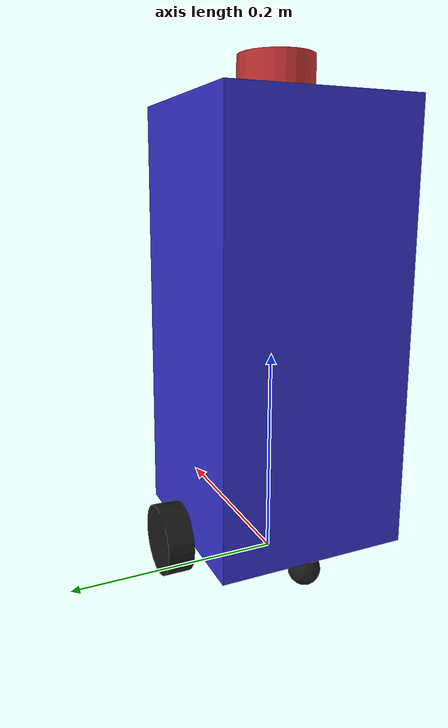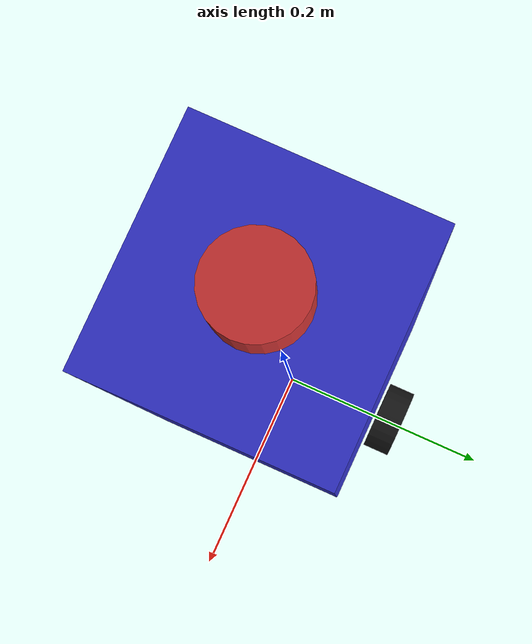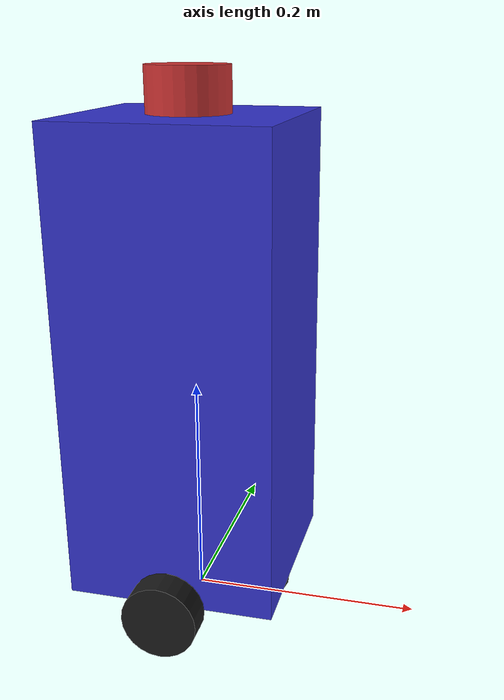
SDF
<?xml version="1.0" ?>
<sdf version="1.7">
  <model name="trash_bot">
    <static>false</static>

    <!-- Base Link -->
    <link name="base_link">
      <pose>0 0 0.0325 0 0 0</pose> <!-- Raised by wheel radius -->

      <inertial>
        <pose>0 0 0.2 0 0 0</pose> <!-- Center of mass at half height -->
        <mass>5.0</mass>
        <inertia>
          <ixx>0.080166667</ixx>
          <ixy>0</ixy>
          <ixz>0</ixz>
          <iyy>0.080166667</iyy>
          <iyz>0</iyz>
          <izz>0.027</izz>
        </inertia>
      </inertial>

      <visual name="base_visual">
        <pose>0 0 0.2 0 0 0</pose>
        <geometry>
          <box>
            <size>0.18 0.18 0.40</size>
          </box>
        </geometry>
        <material>
          <ambient>0.2 0.2 0.8 1</ambient>
          <diffuse>0.2 0.2 0.8 1</diffuse>
        </material>
      </visual>

      <collision name="base_collision">
        <pose>0 0 0.2 0 0 0</pose>
        <geometry>
          <box>
            <size>0.18 0.18 0.40</size>
          </box>
        </geometry>
      </collision>

      <!-- Caster Wheel (Front) -->
      <visual name="front_caster_visual">
        <pose>0.07 0 -0.0175 0 0 0</pose>
        <geometry>
          <sphere>
            <radius>0.015</radius>
          </sphere>
        </geometry>
        <material>
          <ambient>0.1 0.1 0.1 1</ambient>
          <diffuse>0.1 0.1 0.1 1</diffuse>
        </material>
      </visual>

      <collision name="front_caster_collision">
        <pose>0.07 0 -0.0175 0 0 0</pose>
        <geometry>
          <sphere>
            <radius>0.015</radius>
          </sphere>
        </geometry>
        <surface>
          <friction>
            <ode>
              <mu>0.01</mu>
              <mu2>0.01</mu2>
            </ode>
          </friction>
        </surface>
      </collision>

      <!-- Caster Wheel (Back) -->
      <visual name="back_caster_visual">
        <pose>-0.07 0 -0.0175 0 0 0</pose>
        <geometry>
          <sphere>
            <radius>0.015</radius>
          </sphere>
        </geometry>
        <material>
          <ambient>0.1 0.1 0.1 1</ambient>
          <diffuse>0.1 0.1 0.1 1</diffuse>
        </material>
      </visual>

      <collision name="back_caster_collision">
        <pose>-0.07 0 -0.0175 0 0 0</pose>
        <geometry>
          <sphere>
            <radius>0.015</radius>
          </sphere>
        </geometry>
        <surface>
          <friction>
            <ode>
              <mu>0.01</mu>
              <mu2>0.01</mu2>
            </ode>
          </friction>
        </surface>
      </collision>
    </link>

    <!-- Left Wheel -->
    <link name="left_wheel">
      <pose>0 0.105 0.0325 -1.57079632679 0 0</pose>
      <inertial>
        <mass>0.15</mass>
        <inertia>
          <ixx>0.0000474375</ixx>
          <ixy>0</ixy>
          <ixz>0</ixz>
          <iyy>0.0000474375</iyy>
          <iyz>0</iyz>
          <izz>0.00007921875</izz>
        </inertia>
      </inertial>
      <visual name="visual">
        <geometry>
          <cylinder>
            <radius>0.0325</radius>
            <length>0.025</length>
          </cylinder>
        </geometry>
        <material>
          <ambient>0.1 0.1 0.1 1</ambient>
          <diffuse>0.1 0.1 0.1 1</diffuse>
        </material>
      </visual>
      <collision name="collision">
        <geometry>
          <cylinder>
            <radius>0.0325</radius>
            <length>0.025</length>
          </cylinder>
        </geometry>
      </collision>
    </link>

    <!-- Right Wheel -->
    <link name="right_wheel">
      <pose>0 -0.105 0.0325 -1.57079632679 0 0</pose>
      <inertial>
        <mass>0.15</mass>
        <inertia>
          <ixx>0.0000474375</ixx>
          <ixy>0</ixy>
          <ixz>0</ixz>
          <iyy>0.0000474375</iyy>
          <iyz>0</iyz>
          <izz>0.00007921875</izz>
        </inertia>
      </inertial>
      <visual name="visual">
        <geometry>
          <cylinder>
            <radius>0.0325</radius>
            <length>0.025</length>
          </cylinder>
        </geometry>
        <material>
          <ambient>0.1 0.1 0.1 1</ambient>
          <diffuse>0.1 0.1 0.1 1</diffuse>
        </material>
      </visual>
      <collision name="collision">
        <geometry>
          <cylinder>
            <radius>0.0325</radius>
            <length>0.025</length>
          </cylinder>
        </geometry>
      </collision>
    </link>

    <!-- Joints -->
    <joint name="left_wheel_joint" type="revolute">
      <parent>base_link</parent>
      <child>left_wheel</child>
      <axis>
        <xyz>0 0 1</xyz>
        <limit>
          <lower>-1e16</lower>
          <upper>1e16</upper>
        </limit>
      </axis>
    </joint>

    <joint name="right_wheel_joint" type="revolute">
      <parent>base_link</parent>
      <child>right_wheel</child>
      <axis>
        <xyz>0 0 1</xyz>
        <limit>
          <lower>-1e16</lower>
          <upper>1e16</upper>
        </limit>
      </axis>
    </joint>

    <!-- Lidar Sensor -->
    <link name="laser_frame">
      <pose>0 0 0.45 0 0 0</pose>
      <inertial>
        <mass>0.1</mass>
        <inertia>
          <ixx>0.0001</ixx>
          <ixy>0</ixy>
          <ixz>0</ixz>
          <iyy>0.0001</iyy>
          <iyz>0</iyz>
          <izz>0.0001</izz>
        </inertia>
      </inertial>
      <visual name="visual">
        <geometry>
          <cylinder>
            <radius>0.035</radius>
            <length>0.04</length>
          </cylinder>
        </geometry>
        <material>
          <ambient>0.8 0.2 0.2 1</ambient>
          <diffuse>0.8 0.2 0.2 1</diffuse>
        </material>
      </visual>
      <sensor name="lidar" type="ray">
        <pose>0 0 0 0 0 0</pose>
        <always_on>true</always_on>
        <visualize>true</visualize>
        <update_rate>10</update_rate>
        <ray>
          <scan>
            <horizontal>
              <samples>360</samples>
              <resolution>1</resolution>
              <min_angle>0.0</min_angle>
              <max_angle>6.28318530718</max_angle>
            </horizontal>
          </scan>
          <range>
            <min>0.15</min>
            <max>12.0</max>
            <resolution>0.01</resolution>
          </range>
        </ray>
        <plugin name="scan" filename="libgazebo_ros_ray_sensor.so">
          <ros>
            <remapping>~/out:=scan</remapping>
          </ros>
          <output_type>sensor_msgs/LaserScan</output_type>
          <frame_name>laser_frame</frame_name>
        </plugin>
      </sensor>
    </link>

    <joint name="lidar_joint" type="fixed">
      <parent>base_link</parent>
      <child>laser_frame</child>
    </joint>

    <!-- Differential Drive Plugin -->
    <plugin name="diff_drive" filename="libgazebo_ros_diff_drive.so">
      <ros>
        <namespace>/</namespace>
      </ros>
      <left_joint>left_wheel_joint</left_joint>
      <right_joint>right_wheel_joint</right_joint>
      <wheel_separation>0.21</wheel_separation>
      <wheel_diameter>0.065</wheel_diameter>
      <max_wheel_torque>10</max_wheel_torque>
      <max_wheel_acceleration>1.0</max_wheel_acceleration>
      <publish_odom>true</publish_odom>
      <publish_odom_tf>true</publish_odom_tf>
      <publish_wheel_tf>true</publish_wheel_tf>
      <odometry_frame>odom</odometry_frame>
      <robot_base_frame>base_link</robot_base_frame>
    </plugin>
  </model>
</sdf>
